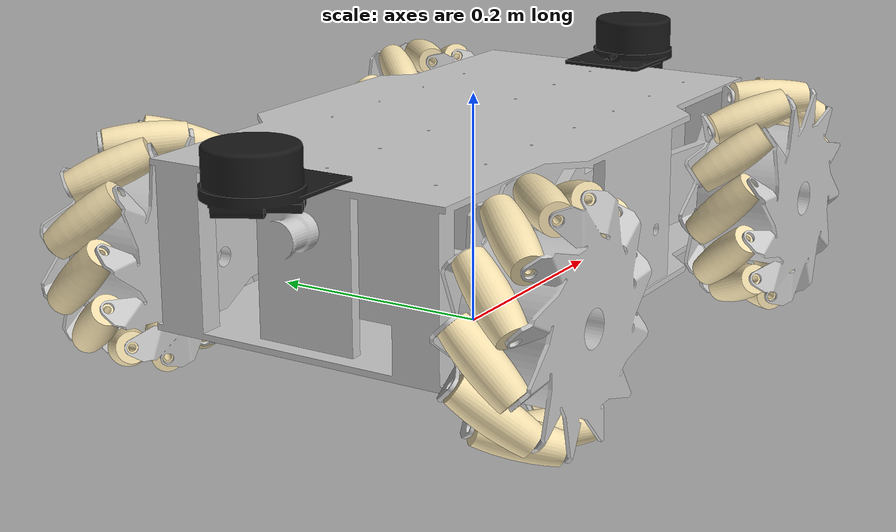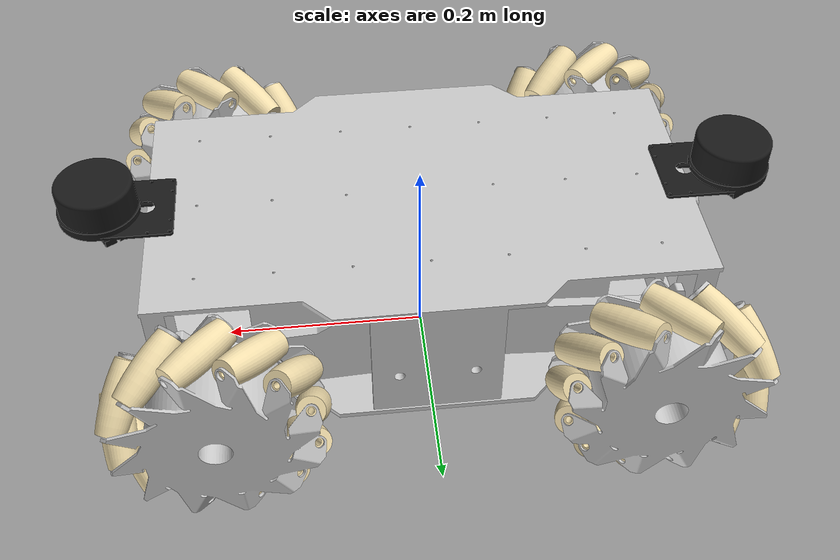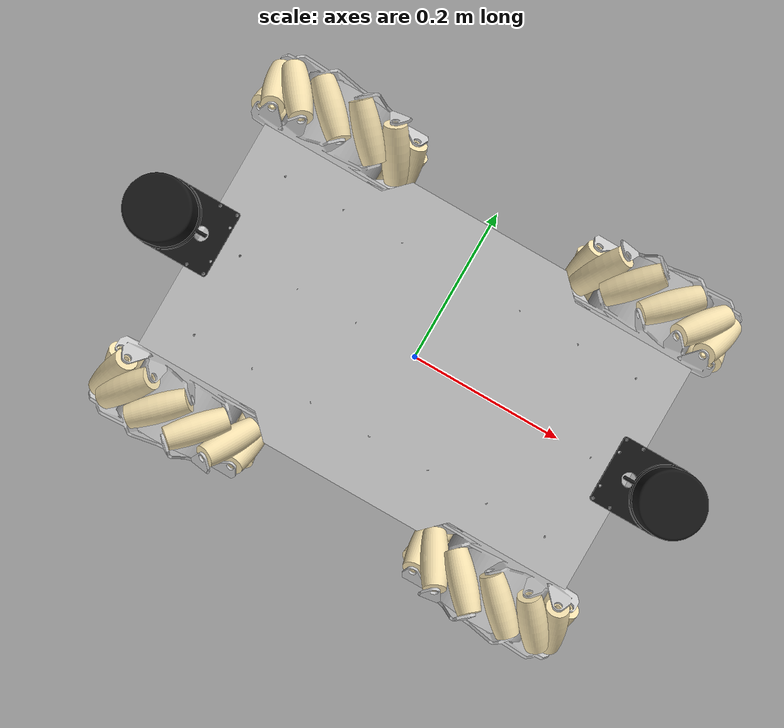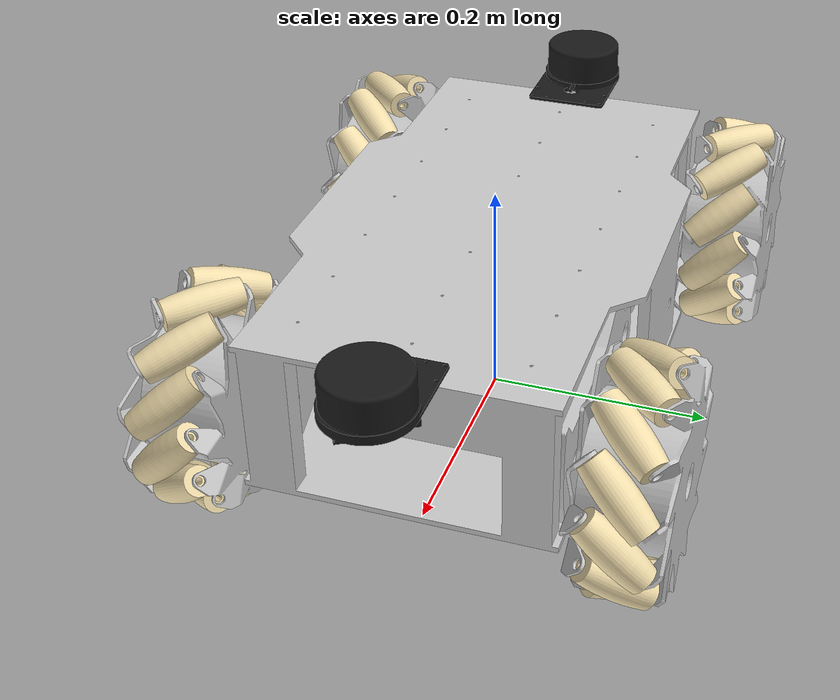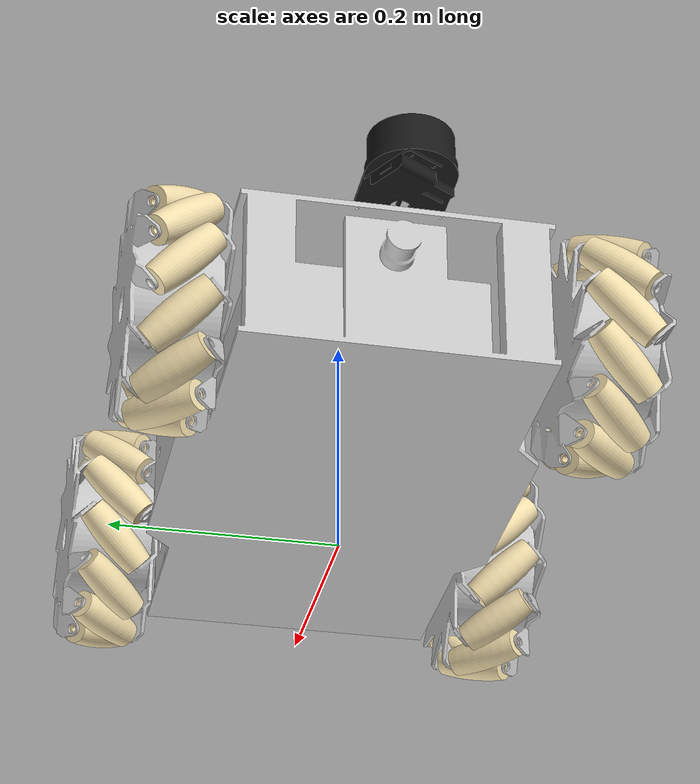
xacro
<?xml version="1.0" ?>
<robot name="g120a" xmlns:xacro="http://www.ros.org/wiki/xacro">

  <xacro:include filename="$(find mecanumrover_description)/urdf/materials.xacro" />
  <xacro:include filename="$(find mecanumrover_description)/urdf/g120a.gazebo" />
  <xacro:include filename="$(find vs_rover_options_description)/urdf/lrf/tg30_g120a.xacro" />

  <!-- OPTION LRF TG30 -->

  <!-- Inertial macros -->
  <xacro:macro name="cylinder_inertial" params="mass radius length">
    <mass value="${mass}"/>
    <inertia
      ixx="${((radius*radius)/4 + (length*length)/12)*mass}"
      ixy="0" ixz="0"
      iyy="${((radius*radius)/4 + (length*length)/12)*mass}"
      iyz="0"
      izz="${(mass*radius*radius)/2}" />
  </xacro:macro>

  <!-- Barrel (roller) macros -->
  <xacro:macro name="barrel_rl" params="prefix parent dir rot">
    <joint name="${prefix}_joint" type="continuous">
      <parent link="${parent}"/>
      <child  link="${prefix}_link"/>
      <origin
        xyz="${0.0859235*cos(radians(dir))} ${0.0859235*sin(radians(dir))} 0"
        rpy="${pi/4*rot} 0 ${radians(dir)}"/>
      <axis xyz="0 0 1"/>
      <dynamics damping="0.0" friction="0.0"/>
    </joint>

    <link name="${prefix}_link">
      <visual>
        <geometry>
          <mesh filename="package://mecanumrover_description/meshes/g120a/mecanum_barrel.stl"
                scale="0.001 0.001 0.001"/>
        </geometry>
        <material name="cream"/>
      </visual>
      <collision>
        <geometry>
          <mesh filename="package://mecanumrover_description/meshes/g120a/mecanum_barrel.stl"
                scale="0.001 0.001 0.001"/>
        </geometry>
      </collision>
      <inertial>
        <xacro:cylinder_inertial mass="0.03" radius="0.0156" length="0.067"/>
      </inertial>
    </link>
  </xacro:macro>

  <xacro:macro name="barrels_rl" params="prefix parent rot">
    <xacro:barrel_rl prefix="${prefix}_0"  parent="${parent}" dir="0"   rot="${rot}"/>
    <xacro:barrel_rl prefix="${prefix}_1"  parent="${parent}" dir="30"  rot="${rot}"/>
    <xacro:barrel_rl prefix="${prefix}_2"  parent="${parent}" dir="60"  rot="${rot}"/>
    <xacro:barrel_rl prefix="${prefix}_3"  parent="${parent}" dir="90"  rot="${rot}"/>
    <xacro:barrel_rl prefix="${prefix}_4"  parent="${parent}" dir="120" rot="${rot}"/>
    <xacro:barrel_rl prefix="${prefix}_5"  parent="${parent}" dir="150" rot="${rot}"/>
    <xacro:barrel_rl prefix="${prefix}_6"  parent="${parent}" dir="180" rot="${rot}"/>
    <xacro:barrel_rl prefix="${prefix}_7"  parent="${parent}" dir="210" rot="${rot}"/>
    <xacro:barrel_rl prefix="${prefix}_8"  parent="${parent}" dir="240" rot="${rot}"/>
    <xacro:barrel_rl prefix="${prefix}_9"  parent="${parent}" dir="270" rot="${rot}"/>
    <xacro:barrel_rl prefix="${prefix}_10" parent="${parent}" dir="300" rot="${rot}"/>
    <xacro:barrel_rl prefix="${prefix}_11" parent="${parent}" dir="330" rot="${rot}"/>
  </xacro:macro>

  <xacro:macro name="attach_mecanum_rollers" params="wheel_prefix wheel_link rot">
    <xacro:barrels_rl
      prefix="${wheel_prefix}_barrel"
      parent="${wheel_link}"
      rot="${rot}"/>
  </xacro:macro>

  <!-- Base -->
  <link name="base_footprint"/>

  <joint name="base_joint" type="fixed">
    <parent link="base_footprint"/>
    <child link="base_link"/>
    <origin xyz="0 0 0.045" rpy="0 0 -1.5708"/>
  </joint>

  <link name="base_link">
    <inertial>
      <origin xyz="0.00008 -0.001484 0.05"/>
      <mass value="35.6"/>
      <inertia ixx="5.260826e-01" iyy="2.253078e-01" izz="6.264345e-01" ixy="-6.578214e-11" iyz="4.340698e-04" ixz="7.274235e-12"/>
    </inertial>
    <visual>
      <geometry>
        <mesh filename="package://mecanumrover_description/meshes/g120a/base_link.stl"
              scale="0.001 0.001 0.001"/>
      </geometry>
      <material name="silver"/>
    </visual>
    <collision>
      <geometry>
        <mesh filename="package://mecanumrover_description/meshes/g120a/base_link.stl"
              scale="0.001 0.001 0.001"/>
      </geometry>
    </collision>
  </link>

  <!-- Arm link macro -->
  <xacro:macro name="g120a_arm_link" params="name">
    <link name="${name}">
      <inertial>
        <origin xyz="0.005 -0.093170 0.006545"/>
        <mass value="0.7"/>
        <inertia ixx="3.141150e-03" iyy="3.882197e-04" izz="2.764597e-03" ixy="-1.225154e-19" ixz="-7.657213e-21" iyz="-2.385480e-04"/>
      </inertial>
      <visual>
        <geometry>
          <mesh filename="package://mecanumrover_description/meshes/g120a/arms.stl"
                scale="0.001 0.001 0.001"/>
        </geometry>
        <material name="silver"/>
      </visual>
      <collision>
        <geometry>
          <mesh filename="package://mecanumrover_description/meshes/g120a/arms.stl"
                scale="0.001 0.001 0.001"/>
        </geometry>
      </collision>
    </link>
  </xacro:macro>

  <!-- Suspension joint macro -->
  <xacro:macro name="g120a_suspension_joint"
               params="name parent child xyz rpy">
    <joint name="${name}" type="revolute">
      <parent link="${parent}"/>
      <child link="${child}"/>
      <origin xyz="${xyz}" rpy="${rpy}"/>
      <axis xyz="1 0 0"/>
      <limit lower="-0.1815142" upper="0" effort="300" velocity="20"/>
      <dynamics damping="5.0" friction="0.1"/>
    </joint>
  </xacro:macro>

  <!-- Wheel link macros -->
  <xacro:macro name="g120a_wheel_link" params="name">
    <link name="${name}">
      <inertial>
        <origin xyz="0 0 0"/>
        <mass value="2.1"/>
        <inertia ixx="3.566749e-03" iyy="3.566747e-03" izz="4.794102e-03" ixy="-7.932688e-21" ixz="-1.586420e-19" iyz="2.339910e-15"/>
      </inertial>
      <visual>
        <geometry>
          <mesh filename="package://mecanumrover_description/meshes/g120a/mecanum_wheel.stl"
                scale="0.001 0.001 0.001"/>
        </geometry>
        <material name="silver"/>
      </visual>
      <collision>
        <geometry>
          <mesh filename="package://mecanumrover_description/meshes/g120a/mecanum_wheel.stl"
                scale="0.001 0.001 0.001"/>
        </geometry>
      </collision>
    </link>
  </xacro:macro>

  <xacro:macro name="g120a_wheel_rev_link" params="name">
    <link name="${name}">
      <inertial>
        <origin xyz="0 0 0"/>
        <mass value="2.1"/>
        <inertia ixx="3.566761e-03" iyy="3.566759e-03" izz="4.794119e-03" ixy="5.552576e-20" ixz="3.172836e-20" iyz="2.337410e-15"/>
      </inertial>
      <visual>
        <geometry>
          <mesh filename="package://mecanumrover_description/meshes/g120a/mecanum_wheel_rev.stl"
                scale="0.001 0.001 0.001"/>
        </geometry>
        <material name="silver"/>
      </visual>
      <collision>
        <geometry>
          <mesh filename="package://mecanumrover_description/meshes/g120a/mecanum_wheel_rev.stl"
                scale="0.001 0.001 0.001"/>
        </geometry>
      </collision>
    </link>
  </xacro:macro>

  <!-- Wheel joint macro -->
  <xacro:macro name="g120a_wheel_joint"
               params="name parent child xyz rpy axis_z">
    <joint name="${name}" type="continuous">
      <parent link="${parent}"/>
      <child link="${child}"/>
      <origin xyz="${xyz}" rpy="${rpy}"/>
      <axis xyz="0 0 ${axis_z}"/>
    </joint>
  </xacro:macro>

  <!-- Arms -->
  <xacro:g120a_arm_link name="front_left_arm"/>
  <xacro:g120a_arm_link name="front_right_arm"/>
  <xacro:g120a_arm_link name="back_left_arm"/>
  <xacro:g120a_arm_link name="back_right_arm"/>

  <!-- Suspension joints -->
  <xacro:g120a_suspension_joint
    name="front_left_suspension_joint"
    parent="base_link"
    child="front_left_arm"
    xyz="-0.119 0.035 0.058"
    rpy="0.0610865 0 ${radians(180)}"/>

  <xacro:g120a_suspension_joint
    name="front_right_suspension_joint"
    parent="base_link"
    child="front_right_arm"
    xyz="0.119 0.035 0.058"
    rpy="0.0610865 0 ${radians(180)}"/>

  <xacro:g120a_suspension_joint
    name="back_left_suspension_joint"
    parent="base_link"
    child="back_left_arm"
    xyz="-0.119 -0.035 0.058"
    rpy="0.0610865 0 0"/>

  <xacro:g120a_suspension_joint
    name="back_right_suspension_joint"
    parent="base_link"
    child="back_right_arm"
    xyz="0.119 -0.035 0.058"
    rpy="0.0610865 0 0"/>

  <!-- Wheels -->
  <xacro:g120a_wheel_rev_link name="front_left_wheel_1"/>
  <xacro:g120a_wheel_link     name="front_right_wheel_1"/>
  <xacro:g120a_wheel_link     name="back_left_wheel_1"/>
  <xacro:g120a_wheel_rev_link name="back_right_wheel_1"/>

  <!-- Wheel joints -->
  <xacro:g120a_wheel_joint
    name="front_left_joint"
    parent="front_left_arm"
    child="front_left_wheel_1"
    xyz="0.061 -0.165 0"
    rpy="0 ${radians(90)} 0"
    axis_z="-1"/>

  <xacro:g120a_wheel_joint
    name="front_right_joint"
    parent="front_right_arm"
    child="front_right_wheel_1"
    xyz="-0.061 -0.165 0"
    rpy="0 ${radians(-90)} 0"
    axis_z="1"/>

  <xacro:g120a_wheel_joint
    name="back_left_joint"
    parent="back_left_arm"
    child="back_left_wheel_1"
    xyz="-0.061 -0.165 0"
    rpy="0 ${radians(-90)} 0"
    axis_z="-1"/>

  <xacro:g120a_wheel_joint
    name="back_right_joint"
    parent="back_right_arm"
    child="back_right_wheel_1"
    xyz="0.061 -0.165 0"
    rpy="0 ${radians(90)} 0"
    axis_z="1"/>

  <!-- Attach mecanum rollers -->
  <xacro:attach_mecanum_rollers wheel_prefix="front_left"  wheel_link="front_left_wheel_1"  rot="-1"/>
  <xacro:attach_mecanum_rollers wheel_prefix="back_left"   wheel_link="back_left_wheel_1"   rot="1"/>
  <xacro:attach_mecanum_rollers wheel_prefix="front_right" wheel_link="front_right_wheel_1" rot="1"/>
  <xacro:attach_mecanum_rollers wheel_prefix="back_right"  wheel_link="back_right_wheel_1"  rot="-1"/>

</robot>

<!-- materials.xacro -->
<robot name="materials" xmlns:xacro="http://www.ros.org/wiki/xacro">

  <material name="silver">
    <color rgba="0.800 0.800 0.800 1.000" />
  </material>

  <material name="dark_silver">
    <color rgba="0.400 0.400 0.400 1.000" />
  </material>

  <material name="dark_grey">
    <color rgba="0.200 0.200 0.200 1.000" />
  </material>

  <material name="black">
    <color rgba="0.100 0.100 0.100 1.000" />
  </material>

  <material name="cream">
    <color rgba="0.9725 0.8941 0.6941 1.0" />
  </material>

</robot>

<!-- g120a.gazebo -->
<robot name="g120a" xmlns:xacro="http://www.ros.org/wiki/xacro">

  <xacro:property name="body_color"   value="Gazebo/Silver"/>
  <xacro:property name="wheel_color"  value="Gazebo/DarkGrey"/>
  <xacro:property name="barrel_color" value="Gazebo/Yellow"/>

  <!-- Gazebo ros2_control plugin      -->
  <gazebo>
    <plugin name="gazebo_ros2_control" filename="libgazebo_ros2_control.so">
      <parameters>
        $(find mecanumrover_description)/params/controllers.yaml
      </parameters>
    </plugin>
  </gazebo>

  <!-- Gazebo reference macros : material                     -->
  <xacro:macro name="gazebo_material" params="ref material">
    <gazebo reference="${ref}">
      <material>${material}</material>
    </gazebo>
  </xacro:macro>

  <!-- Gazebo reference macro : suspension spring / damper    -->
  <xacro:macro name="gazebo_suspension_spring" params="joint">
    <gazebo reference="${joint}">
      <springReference>0.0</springReference>
      <springStiffness>1134.375</springStiffness>
      <damping>10</damping>
    </gazebo>
  </xacro:macro>

  <!-- Mecanum Roller Friction Macros (FIXED VERSION)         -->
  <xacro:macro name="mecanum_barrel_friction" params="linkname dir">
    <gazebo reference="${linkname}">
      <material>${barrel_color}</material>
      <mu1>1.0</mu1>
      <mu2>0.6</mu2>
      <slip1>0.1</slip1>
      <slip2>0.1</slip2>
      <kp>1e6</kp>
      <kd>100.0</kd>
      <minDepth>0.0001</minDepth>
      <maxVel>0.1</maxVel>
    </gazebo>
  </xacro:macro>

  <xacro:macro name="mecanum_barrel_group_friction" params="prefix">
    <xacro:mecanum_barrel_friction linkname="${prefix}_0_link"  dir="0" />
    <xacro:mecanum_barrel_friction linkname="${prefix}_1_link"  dir="30" />
    <xacro:mecanum_barrel_friction linkname="${prefix}_2_link"  dir="60" />
    <xacro:mecanum_barrel_friction linkname="${prefix}_3_link"  dir="90" />
    <xacro:mecanum_barrel_friction linkname="${prefix}_4_link"  dir="120" />
    <xacro:mecanum_barrel_friction linkname="${prefix}_5_link"  dir="150" />
    <xacro:mecanum_barrel_friction linkname="${prefix}_6_link"  dir="180" />
    <xacro:mecanum_barrel_friction linkname="${prefix}_7_link"  dir="210" />
    <xacro:mecanum_barrel_friction linkname="${prefix}_8_link"  dir="240" />
    <xacro:mecanum_barrel_friction linkname="${prefix}_9_link"  dir="270" />
    <xacro:mecanum_barrel_friction linkname="${prefix}_10_link" dir="300" />
    <xacro:mecanum_barrel_friction linkname="${prefix}_11_link" dir="330" />
  </xacro:macro>

  <!-- Materials (Base / Arms / Wheels) -->
  <xacro:gazebo_material ref="base_link" material="${body_color}"/>
  <xacro:gazebo_material ref="front_left_arm"  material="${wheel_color}"/>
  <xacro:gazebo_material ref="front_right_arm" material="${wheel_color}"/>
  <xacro:gazebo_material ref="back_left_arm"   material="${wheel_color}"/>
  <xacro:gazebo_material ref="back_right_arm"  material="${wheel_color}"/>
  <xacro:gazebo_material ref="front_left_wheel_1"  material="${body_color}"/>
  <xacro:gazebo_material ref="front_right_wheel_1" material="${body_color}"/>
  <xacro:gazebo_material ref="back_left_wheel_1"   material="${body_color}"/>
  <xacro:gazebo_material ref="back_right_wheel_1"  material="${body_color}"/>

  <!-- Gazebo suspension spring/damper (common) -->
  <xacro:gazebo_suspension_spring joint="front_left_suspension_joint"/>
  <xacro:gazebo_suspension_spring joint="front_right_suspension_joint"/>
  <xacro:gazebo_suspension_spring joint="back_left_suspension_joint"/>
  <xacro:gazebo_suspension_spring joint="back_right_suspension_joint"/>

  <!-- Apply roller friction to all 4 mecanum wheels          -->
  <xacro:mecanum_barrel_group_friction prefix="front_left_barrel" />
  <xacro:mecanum_barrel_group_friction prefix="back_left_barrel" />
  <xacro:mecanum_barrel_group_friction prefix="front_right_barrel" />
  <xacro:mecanum_barrel_group_friction prefix="back_right_barrel" />

</robot>

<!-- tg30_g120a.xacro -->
<robot name="lrf_tg30_g120a" xmlns:xacro="http://ros.org/wiki/xacro">
  <xacro:include filename="$(find vs_rover_options_description)/urdf/lrf/tg30_g120a.gazebo" />

  <xacro:property name="tg30_lrf_front_x_offset" value="0.0" />
  <xacro:property name="tg30_lrf_front_y_offset" value="0.29904" />
  <xacro:property name="tg30_lrf_front_z_offset" value="0.1679" />
  <xacro:property name="tg30_lrf_back_x_offset" value="0.0" />
  <xacro:property name="tg30_lrf_back_y_offset" value="-0.29904" />
  <xacro:property name="tg30_lrf_back_z_offset" value="0.1679" />
  <xacro:property name="tg30_center_of_mass_x" value="-0.004299" />
  <xacro:property name="tg30_center_of_mass_y" value="-0.000337" />
  <xacro:property name="tg30_center_of_mass_z" value="-0.018037" />

  <joint name="front_lrf_joint" type="fixed">
    <parent link="base_link" />
    <child link="front_lrf_link" />
    <origin xyz="${tg30_lrf_front_x_offset} ${tg30_lrf_front_y_offset} ${tg30_lrf_front_z_offset}" rpy="0 0 ${pi/2}" />
  </joint>

  <link name="front_lrf_link">
    <inertial>
      <origin xyz="${tg30_center_of_mass_x} ${tg30_center_of_mass_y} ${tg30_center_of_mass_z}" rpy="0 0 0" />
      <mass value="0.200" />
      <inertia ixx="0.0001205" iyy="0.0001561" izz="0.0001977"
        ixy="0.00" iyz="0.00"
        ixz="0.00" />
    </inertial>
    <visual>
      <origin xyz="0 0 0" rpy="0 0 0" />
      <geometry>
        <mesh filename="package://vs_rover_options_description/meshes/lrf/tg30.stl" scale="0.001 0.001 0.001" />
      </geometry>
      <material name="black" />
    </visual>
    <collision>
      <origin xyz="0 0 0" rpy="0 0 0" />
      <geometry>
        <mesh filename="package://vs_rover_options_description/meshes/lrf/tg30.stl" scale="0.001 0.001 0.001" />
      </geometry>
    </collision>
  </link>

  <joint name="back_lrf_joint" type="fixed">
    <parent link="base_link" />
    <child link="back_lrf_link" />
    <origin xyz="${tg30_lrf_back_x_offset} ${tg30_lrf_back_y_offset} ${tg30_lrf_back_z_offset}" rpy="0 0 ${-pi/2}" />
  </joint>

  <link name="back_lrf_link">
    <inertial>
      <origin xyz="${tg30_center_of_mass_x} ${tg30_center_of_mass_y} ${tg30_center_of_mass_z}" rpy="0 0 0" />
      <mass value="0.200" />
      <inertia ixx="0.0001205" iyy="0.0001561" izz="0.0001977"
        ixy="0.00" iyz="0.00"
        ixz="0.00" />
    </inertial>
    <visual>
      <origin xyz="0 0 0" rpy="0 0 0" />
      <geometry>
        <mesh filename="package://vs_rover_options_description/meshes/lrf/tg30.stl" scale="0.001 0.001 0.001" />
      </geometry>
      <material name="black" />
    </visual>
    <collision>
      <origin xyz="0 0 0" rpy="0 0 0" />
      <geometry>
        <mesh filename="package://vs_rover_options_description/meshes/lrf/tg30.stl" scale="0.001 0.001 0.001" />
      </geometry>
    </collision>
  </link>

</robot>

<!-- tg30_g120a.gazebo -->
<robot name="lrf_tg30_g120a" xmlns:xacro="http://www.ros.org/wiki/xacro">

  <xacro:arg name="front_laser_visual" default="false" />
  <xacro:arg name="back_laser_visual" default="false" />

  <xacro:property name="lrf_color" value="Gazebo/FlatBlack" />
  <xacro:property name="DEG_TO_RAD" value="0.01745329251994329577" />
  <xacro:property name="LRF_ANGLE" value="172" />

  <gazebo reference="front_lrf_link">
    <material>${lrf_color}</material>
    <selfCollide>true</selfCollide>
    <sensor name="tg30_lidar_front" type="ray">
        <always_on>true</always_on>
        <visualize>$(arg front_laser_visual)</visualize>
        <pose>0 0 0 0 0 0</pose>
        <update_rate>12</update_rate>
        <ray>
          <scan>
            <horizontal>
              <samples>360</samples>
              <resolution>1.0</resolution>
              <min_angle>${-LRF_ANGLE*DEG_TO_RAD}</min_angle>
              <max_angle>${ LRF_ANGLE*DEG_TO_RAD}</max_angle>
            </horizontal>
          </scan>
          <range>
            <min>0.05</min>
            <max>30.0</max>
            <resolution>0.01</resolution>
          </range>
          <noise>
            <type>gaussian</type>
            <mean>0.0</mean>
            <stddev>0.01</stddev>
          </noise>
        </ray>
        <plugin name="mecanum3_front_laserscan" filename="libgazebo_ros_ray_sensor.so">
          <ros>
            <remapping>~/out:=scan</remapping>
          </ros>
          <output_type>sensor_msgs/LaserScan</output_type>
          <frame_name>front_lrf_link</frame_name>
        </plugin>
      </sensor>
  </gazebo>

  <gazebo reference="back_lrf_link">
    <material>${lrf_color}</material>
    <selfCollide>true</selfCollide>
    <sensor name="tg30_lidar_back" type="ray">
        <always_on>true</always_on>
        <visualize>$(arg back_laser_visual)</visualize>
        <pose>0 0 0 0 0 0</pose>
        <update_rate>12</update_rate>
        <ray>
          <scan>
            <horizontal>
              <samples>360</samples>
              <resolution>1.0</resolution>
              <min_angle>${-LRF_ANGLE*DEG_TO_RAD}</min_angle>
              <max_angle>${ LRF_ANGLE*DEG_TO_RAD}</max_angle>
            </horizontal>
          </scan>
          <range>
            <min>0.05</min>
            <max>30.0</max>
            <resolution>0.01</resolution>
          </range>
          <noise>
            <type>gaussian</type>
            <mean>0.0</mean>
            <stddev>0.01</stddev>
          </noise>
        </ray>
        <plugin name="mecanum3_back_laserscan" filename="libgazebo_ros_ray_sensor.so">
          <ros>
            <remapping>~/out:=back_scan</remapping>
          </ros>
          <output_type>sensor_msgs/LaserScan</output_type>
          <frame_name>back_lrf_link</frame_name>
        </plugin>
      </sensor>
  </gazebo>
</robot>
